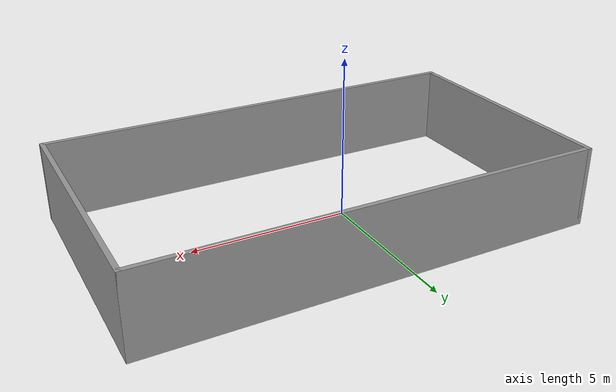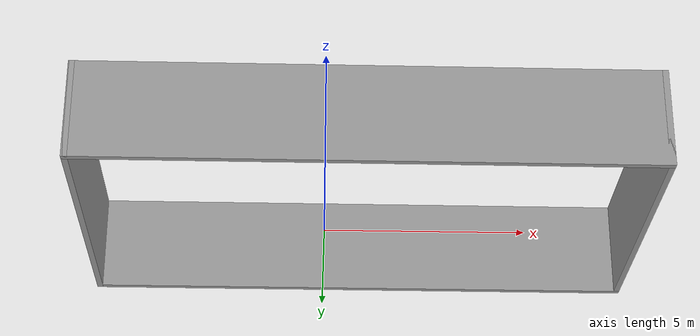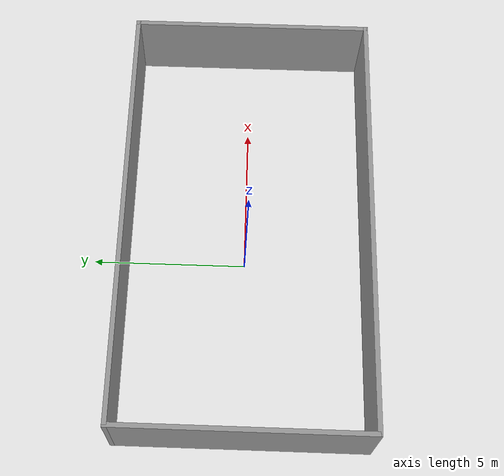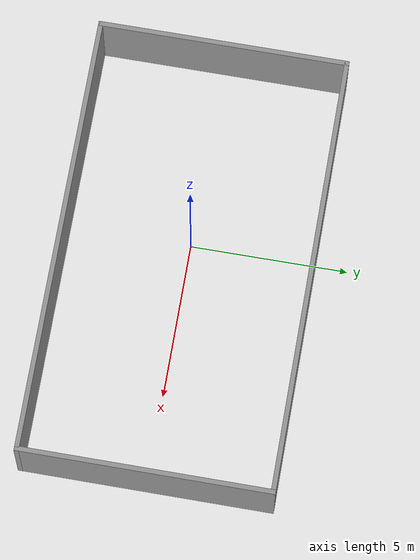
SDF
<?xml version='1.0'?>
<sdf version='1.6'>
  <model name='warehouse_walls'>
    <pose frame=''>1 0 0 0 -0 0</pose>
    <link name='Wall_11'>
      <collision name='Wall_11_Collision'>
        <geometry>
          <box>
            <size>14.15 0.15 2.5</size>
          </box>
        </geometry>
        <pose frame=''>0 0 1.25 0 -0 0</pose>
      </collision>
      <visual name='Wall_11_Visual'>
        <pose frame=''>0 0 1.25 0 -0 0</pose>
        <geometry>
          <box>
            <size>14.15 0.15 2.5</size>
          </box>
        </geometry>
        <material>
          <script>
            <uri>file://media/materials/scripts/gazebo.material</uri>
            <name>Gazebo/Grey</name>
          </script>
          <ambient>1 1 1 1</ambient>
        </material>
        <meta>
          <layer>0</layer>
        </meta>
      </visual>
      <pose frame=''>-0 -3.925 0 0 -0 0</pose>
    </link>
    <link name='Wall_13'>
      <collision name='Wall_13_Collision'>
        <geometry>
          <box>
            <size>14.15 0.15 2.5</size>
          </box>
        </geometry>
        <pose frame=''>0 0 1.25 0 -0 0</pose>
      </collision>
      <visual name='Wall_13_Visual'>
        <pose frame=''>0 0 1.25 0 -0 0</pose>
        <geometry>
          <box>
            <size>14.15 0.15 2.5</size>
          </box>
        </geometry>
        <material>
          <script>
            <uri>file://media/materials/scripts/gazebo.material</uri>
            <name>Gazebo/Grey</name>
          </script>
          <ambient>1 1 1 1</ambient>
        </material>
        <meta>
          <layer>0</layer>
        </meta>
      </visual>
      <pose frame=''>-0 3.925 0 0 -0 0</pose>
    </link>
    <link name='Wall_4'>
      <collision name='Wall_4_Collision'>
        <geometry>
          <box>
            <size>8 0.15 2.5</size>
          </box>
        </geometry>
        <pose frame=''>0 0 1.25 0 -0 0</pose>
      </collision>
      <visual name='Wall_4_Visual'>
        <pose frame=''>0 0 1.25 0 -0 0</pose>
        <geometry>
          <box>
            <size>8 0.15 2.5</size>
          </box>
        </geometry>
        <material>
          <script>
            <uri>file://media/materials/scripts/gazebo.material</uri>
            <name>Gazebo/Grey</name>
          </script>
          <ambient>1 1 1 1</ambient>
        </material>
        <meta>
          <layer>0</layer>
        </meta>
      </visual>
      <pose frame=''>-7 0 0 0 -0 -1.5708</pose>
    </link>
    <link name='Wall_8'>
      <collision name='Wall_8_Collision'>
        <geometry>
          <box>
            <size>8 0.15 2.5</size>
          </box>
        </geometry>
        <pose frame=''>0 0 1.25 0 -0 0</pose>
      </collision>
      <visual name='Wall_8_Visual'>
        <pose frame=''>0 0 1.25 0 -0 0</pose>
        <geometry>
          <box>
            <size>8 0.15 2.5</size>
          </box>
        </geometry>
        <material>
          <script>
            <uri>file://media/materials/scripts/gazebo.material</uri>
            <name>Gazebo/Grey</name>
          </script>
          <ambient>1 1 1 1</ambient>
        </material>
        <meta>
          <layer>0</layer>
        </meta>
      </visual>
      <pose frame=''>7 0 0 0 -0 -1.5708</pose>
    </link>
    <static>1</static>
  </model>
</sdf>
